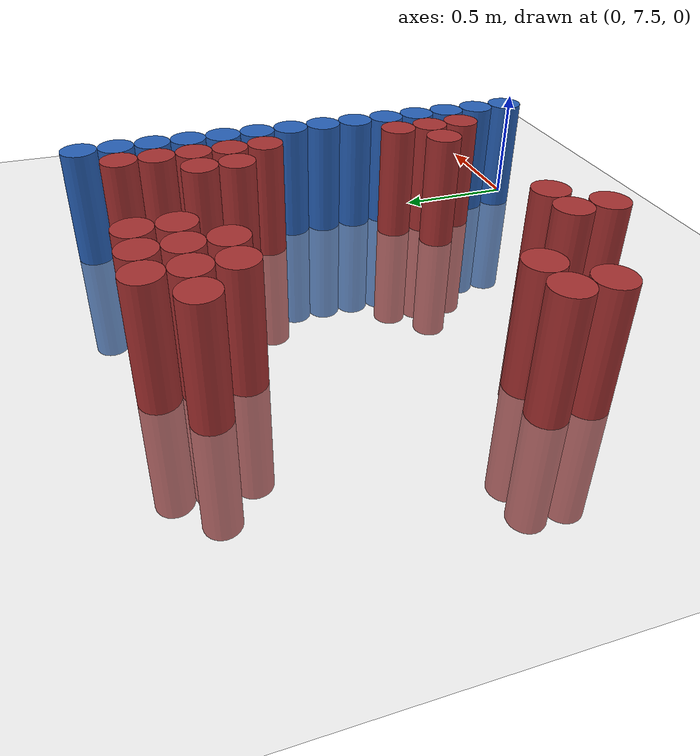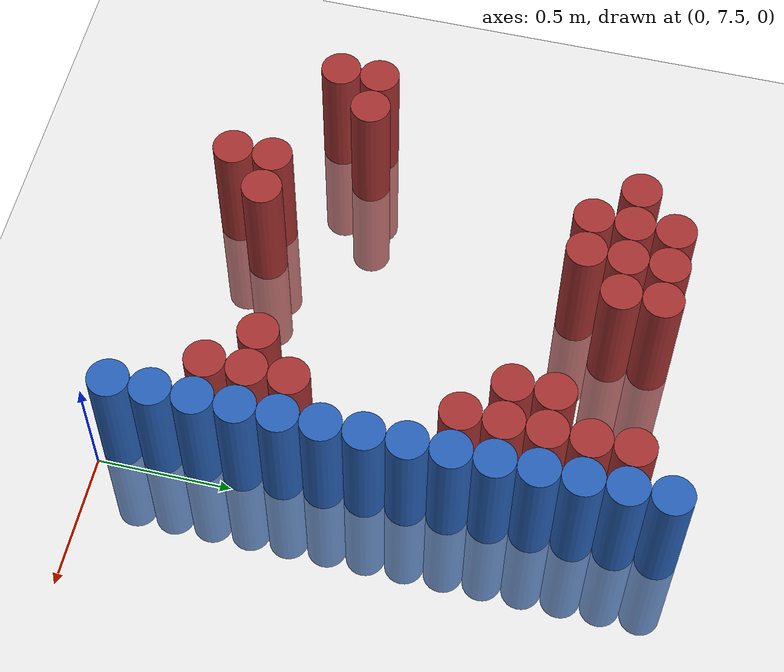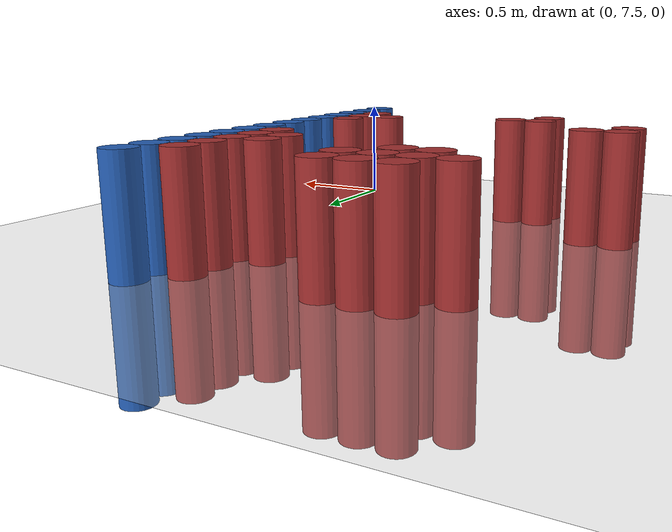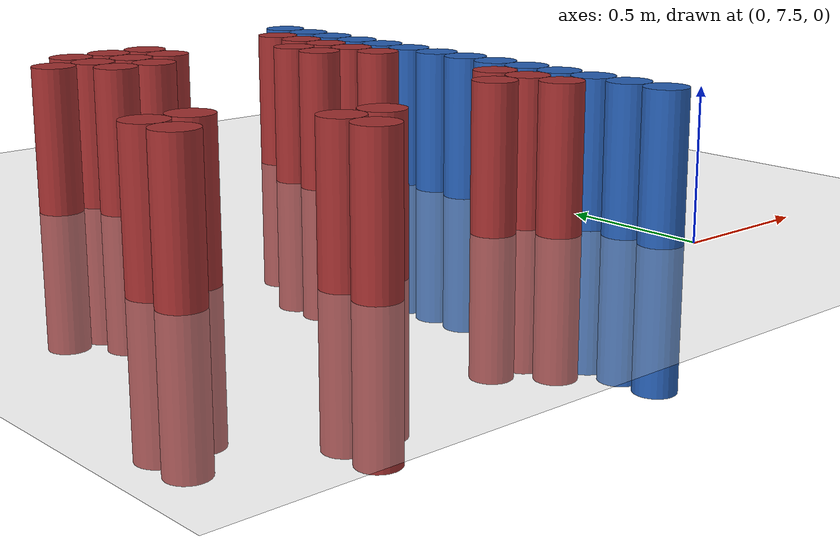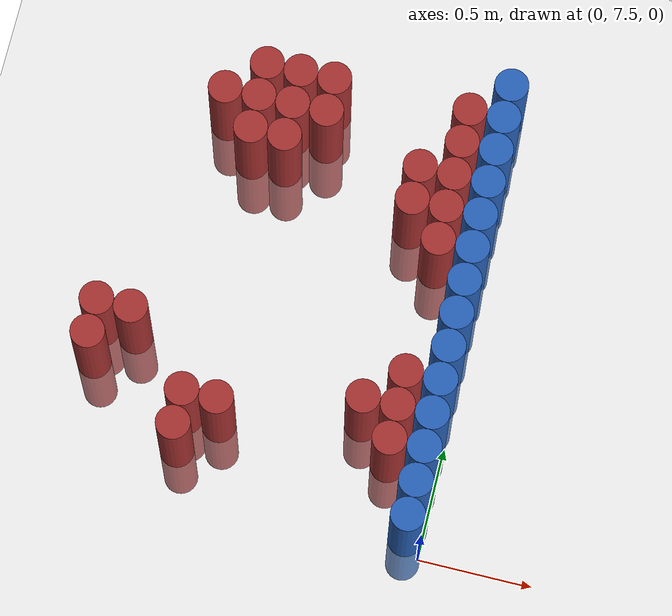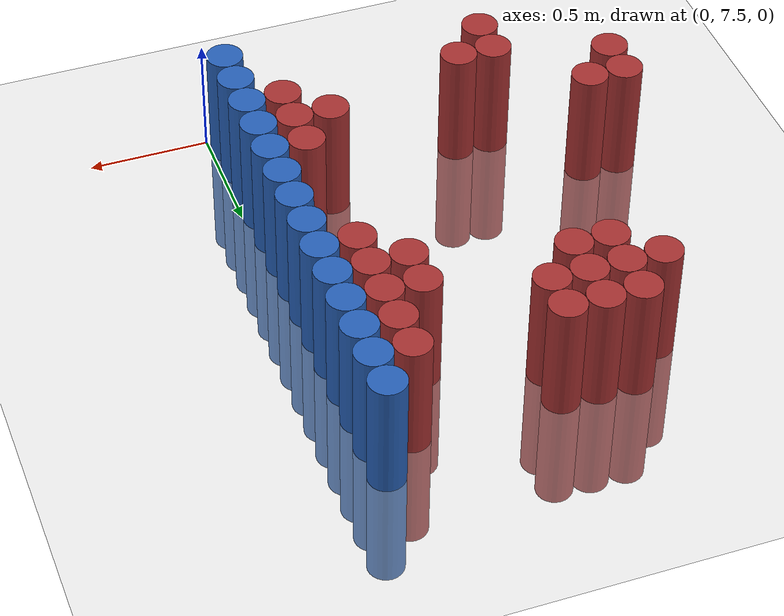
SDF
<sdf version="1.6">
 <world name="default">
  <model name="ground_plane">
   <static>1</static>
   <link name="link">
    <collision name="collision">
     <geometry><plane><normal>0 0 1</normal><size>100 100</size></plane></geometry>
     <surface><friction><ode><mu>100</mu><mu2>50</mu2></ode></friction></surface>
    </collision>
    <visual name="visual">
     <cast_shadows>0</cast_shadows>
     <geometry><plane><normal>0 0 1</normal><size>100 100</size></plane></geometry>
     <material>
      <script><uri>file://media/materials/scripts/gazebo.material</uri><name>Gazebo/Grey</name></script>
     </material>
    </visual>
   </link>
  </model>
  <model name="unit_cylinder_227">
   <static>1</static>
   <pose>-1.575000 8.025000 0.000000 0.000000 0.000000 0.000000</pose>
   <link name="link">
    <inertial>
     <mass>1</mass>
     <inertia><ixx>0.145833</ixx><ixy>0</ixy><ixz>0</ixz><iyy>0.145833</iyy><iyz>0</iyz><izz>0.125</izz></inertia>
    </inertial>
    <collision name="collision">
     <geometry><cylinder><radius>0.075000</radius><length>1</length></cylinder></geometry>
    </collision>
    <visual name="visual">
     <geometry><cylinder><radius>0.075000</radius><length>1</length></cylinder></geometry>
     <material>
      <ambient>0.648000 0.192000 0.192000 1</ambient>
      <diffuse>0.648000 0.192000 0.192000 1</diffuse>
     </material>
     <material>
      <script><name>Gazebo/Grey</name><uri>file://media/materials/scripts/gazebo.material</uri></script>
     </material>
    </visual>
    <sensor name="sensor_contact" type="contact"><contact><collision>collision</collision></contact></sensor>
   </link>
   <plugin filename="gz-sim-touchplugin-system" name="gz::sim::systems::TouchPlugin">
    <target>robot</target>
    <namespace>robot</namespace>
    <time>0.001</time>
    <enabled>true</enabled>
   </plugin>
  </model>
  <model name="unit_cylinder_228">
   <static>1</static>
   <pose>-1.575000 8.175000 0.000000 0.000000 0.000000 0.000000</pose>
   <link name="link">
    <inertial>
     <mass>1</mass>
     <inertia><ixx>0.145833</ixx><ixy>0</ixy><ixz>0</ixz><iyy>0.145833</iyy><iyz>0</iyz><izz>0.125</izz></inertia>
    </inertial>
    <collision name="collision">
     <geometry><cylinder><radius>0.075000</radius><length>1</length></cylinder></geometry>
    </collision>
    <visual name="visual">
     <geometry><cylinder><radius>0.075000</radius><length>1</length></cylinder></geometry>
     <material>
      <ambient>0.648000 0.192000 0.192000 1</ambient>
      <diffuse>0.648000 0.192000 0.192000 1</diffuse>
     </material>
     <material>
      <script><name>Gazebo/Grey</name><uri>file://media/materials/scripts/gazebo.material</uri></script>
     </material>
    </visual>
    <sensor name="sensor_contact" type="contact"><contact><collision>collision</collision></contact></sensor>
   </link>
   <plugin filename="gz-sim-touchplugin-system" name="gz::sim::systems::TouchPlugin">
    <target>robot</target>
    <namespace>robot</namespace>
    <time>0.001</time>
    <enabled>true</enabled>
   </plugin>
  </model>
  <model name="unit_cylinder_232">
   <static>1</static>
   <pose>-1.425000 8.175000 0.000000 0.000000 0.000000 0.000000</pose>
   <link name="link">
    <inertial>
     <mass>1</mass>
     <inertia><ixx>0.145833</ixx><ixy>0</ixy><ixz>0</ixz><iyy>0.145833</iyy><iyz>0</iyz><izz>0.125</izz></inertia>
    </inertial>
    <collision name="collision">
     <geometry><cylinder><radius>0.075000</radius><length>1</length></cylinder></geometry>
    </collision>
    <visual name="visual">
     <geometry><cylinder><radius>0.075000</radius><length>1</length></cylinder></geometry>
     <material>
      <ambient>0.648000 0.192000 0.192000 1</ambient>
      <diffuse>0.648000 0.192000 0.192000 1</diffuse>
     </material>
     <material>
      <script><name>Gazebo/Grey</name><uri>file://media/materials/scripts/gazebo.material</uri></script>
     </material>
    </visual>
    <sensor name="sensor_contact" type="contact"><contact><collision>collision</collision></contact></sensor>
   </link>
   <plugin filename="gz-sim-touchplugin-system" name="gz::sim::systems::TouchPlugin">
    <target>robot</target>
    <namespace>robot</namespace>
    <time>0.001</time>
    <enabled>true</enabled>
   </plugin>
  </model>
  <model name="unit_cylinder_236">
   <static>1</static>
   <pose>-1.275000 9.225000 0.000000 0.000000 0.000000 0.000000</pose>
   <link name="link">
    <inertial>
     <mass>1</mass>
     <inertia><ixx>0.145833</ixx><ixy>0</ixy><ixz>0</ixz><iyy>0.145833</iyy><iyz>0</iyz><izz>0.125</izz></inertia>
    </inertial>
    <collision name="collision">
     <geometry><cylinder><radius>0.075000</radius><length>1</length></cylinder></geometry>
    </collision>
    <visual name="visual">
     <geometry><cylinder><radius>0.075000</radius><length>1</length></cylinder></geometry>
     <material>
      <ambient>0.648000 0.192000 0.192000 1</ambient>
      <diffuse>0.648000 0.192000 0.192000 1</diffuse>
     </material>
     <material>
      <script><name>Gazebo/Grey</name><uri>file://media/materials/scripts/gazebo.material</uri></script>
     </material>
    </visual>
    <sensor name="sensor_contact" type="contact"><contact><collision>collision</collision></contact></sensor>
   </link>
   <plugin filename="gz-sim-touchplugin-system" name="gz::sim::systems::TouchPlugin">
    <target>robot</target>
    <namespace>robot</namespace>
    <time>0.001</time>
    <enabled>true</enabled>
   </plugin>
  </model>
  <model name="unit_cylinder_240">
   <static>1</static>
   <pose>-1.125000 7.725000 0.000000 0.000000 0.000000 0.000000</pose>
   <link name="link">
    <inertial>
     <mass>1</mass>
     <inertia><ixx>0.145833</ixx><ixy>0</ixy><ixz>0</ixz><iyy>0.145833</iyy><iyz>0</iyz><izz>0.125</izz></inertia>
    </inertial>
    <collision name="collision">
     <geometry><cylinder><radius>0.075000</radius><length>1</length></cylinder></geometry>
    </collision>
    <visual name="visual">
     <geometry><cylinder><radius>0.075000</radius><length>1</length></cylinder></geometry>
     <material>
      <ambient>0.648000 0.192000 0.192000 1</ambient>
      <diffuse>0.648000 0.192000 0.192000 1</diffuse>
     </material>
     <material>
      <script><name>Gazebo/Grey</name><uri>file://media/materials/scripts/gazebo.material</uri></script>
     </material>
    </visual>
    <sensor name="sensor_contact" type="contact"><contact><collision>collision</collision></contact></sensor>
   </link>
   <plugin filename="gz-sim-touchplugin-system" name="gz::sim::systems::TouchPlugin">
    <target>robot</target>
    <namespace>robot</namespace>
    <time>0.001</time>
    <enabled>true</enabled>
   </plugin>
  </model>
  <model name="unit_cylinder_241">
   <static>1</static>
   <pose>-1.125000 7.875000 0.000000 0.000000 0.000000 0.000000</pose>
   <link name="link">
    <inertial>
     <mass>1</mass>
     <inertia><ixx>0.145833</ixx><ixy>0</ixy><ixz>0</ixz><iyy>0.145833</iyy><iyz>0</iyz><izz>0.125</izz></inertia>
    </inertial>
    <collision name="collision">
     <geometry><cylinder><radius>0.075000</radius><length>1</length></cylinder></geometry>
    </collision>
    <visual name="visual">
     <geometry><cylinder><radius>0.075000</radius><length>1</length></cylinder></geometry>
     <material>
      <ambient>0.648000 0.192000 0.192000 1</ambient>
      <diffuse>0.648000 0.192000 0.192000 1</diffuse>
     </material>
     <material>
      <script><name>Gazebo/Grey</name><uri>file://media/materials/scripts/gazebo.material</uri></script>
     </material>
    </visual>
    <sensor name="sensor_contact" type="contact"><contact><collision>collision</collision></contact></sensor>
   </link>
   <plugin filename="gz-sim-touchplugin-system" name="gz::sim::systems::TouchPlugin">
    <target>robot</target>
    <namespace>robot</namespace>
    <time>0.001</time>
    <enabled>true</enabled>
   </plugin>
  </model>
  <model name="unit_cylinder_242">
   <static>1</static>
   <pose>-1.125000 9.075000 0.000000 0.000000 0.000000 0.000000</pose>
   <link name="link">
    <inertial>
     <mass>1</mass>
     <inertia><ixx>0.145833</ixx><ixy>0</ixy><ixz>0</ixz><iyy>0.145833</iyy><iyz>0</iyz><izz>0.125</izz></inertia>
    </inertial>
    <collision name="collision">
     <geometry><cylinder><radius>0.075000</radius><length>1</length></cylinder></geometry>
    </collision>
    <visual name="visual">
     <geometry><cylinder><radius>0.075000</radius><length>1</length></cylinder></geometry>
     <material>
      <ambient>0.648000 0.192000 0.192000 1</ambient>
      <diffuse>0.648000 0.192000 0.192000 1</diffuse>
     </material>
     <material>
      <script><name>Gazebo/Grey</name><uri>file://media/materials/scripts/gazebo.material</uri></script>
     </material>
    </visual>
    <sensor name="sensor_contact" type="contact"><contact><collision>collision</collision></contact></sensor>
   </link>
   <plugin filename="gz-sim-touchplugin-system" name="gz::sim::systems::TouchPlugin">
    <target>robot</target>
    <namespace>robot</namespace>
    <time>0.001</time>
    <enabled>true</enabled>
   </plugin>
  </model>
  <model name="unit_cylinder_243">
   <static>1</static>
   <pose>-1.125000 9.225000 0.000000 0.000000 0.000000 0.000000</pose>
   <link name="link">
    <inertial>
     <mass>1</mass>
     <inertia><ixx>0.145833</ixx><ixy>0</ixy><ixz>0</ixz><iyy>0.145833</iyy><iyz>0</iyz><izz>0.125</izz></inertia>
    </inertial>
    <collision name="collision">
     <geometry><cylinder><radius>0.075000</radius><length>1</length></cylinder></geometry>
    </collision>
    <visual name="visual">
     <geometry><cylinder><radius>0.075000</radius><length>1</length></cylinder></geometry>
     <material>
      <ambient>0.648000 0.192000 0.192000 1</ambient>
      <diffuse>0.648000 0.192000 0.192000 1</diffuse>
     </material>
     <material>
      <script><name>Gazebo/Grey</name><uri>file://media/materials/scripts/gazebo.material</uri></script>
     </material>
    </visual>
    <sensor name="sensor_contact" type="contact"><contact><collision>collision</collision></contact></sensor>
   </link>
   <plugin filename="gz-sim-touchplugin-system" name="gz::sim::systems::TouchPlugin">
    <target>robot</target>
    <namespace>robot</namespace>
    <time>0.001</time>
    <enabled>true</enabled>
   </plugin>
  </model>
  <model name="unit_cylinder_244">
   <static>1</static>
   <pose>-1.125000 9.375000 0.000000 0.000000 0.000000 0.000000</pose>
   <link name="link">
    <inertial>
     <mass>1</mass>
     <inertia><ixx>0.145833</ixx><ixy>0</ixy><ixz>0</ixz><iyy>0.145833</iyy><iyz>0</iyz><izz>0.125</izz></inertia>
    </inertial>
    <collision name="collision">
     <geometry><cylinder><radius>0.075000</radius><length>1</length></cylinder></geometry>
    </collision>
    <visual name="visual">
     <geometry><cylinder><radius>0.075000</radius><length>1</length></cylinder></geometry>
     <material>
      <ambient>0.648000 0.192000 0.192000 1</ambient>
      <diffuse>0.648000 0.192000 0.192000 1</diffuse>
     </material>
     <material>
      <script><name>Gazebo/Grey</name><uri>file://media/materials/scripts/gazebo.material</uri></script>
     </material>
    </visual>
    <sensor name="sensor_contact" type="contact"><contact><collision>collision</collision></contact></sensor>
   </link>
   <plugin filename="gz-sim-touchplugin-system" name="gz::sim::systems::TouchPlugin">
    <target>robot</target>
    <namespace>robot</namespace>
    <time>0.001</time>
    <enabled>true</enabled>
   </plugin>
  </model>
  <model name="unit_cylinder_251">
   <static>1</static>
   <pose>-0.975000 7.875000 0.000000 0.000000 0.000000 0.000000</pose>
   <link name="link">
    <inertial>
     <mass>1</mass>
     <inertia><ixx>0.145833</ixx><ixy>0</ixy><ixz>0</ixz><iyy>0.145833</iyy><iyz>0</iyz><izz>0.125</izz></inertia>
    </inertial>
    <collision name="collision">
     <geometry><cylinder><radius>0.075000</radius><length>1</length></cylinder></geometry>
    </collision>
    <visual name="visual">
     <geometry><cylinder><radius>0.075000</radius><length>1</length></cylinder></geometry>
     <material>
      <ambient>0.648000 0.192000 0.192000 1</ambient>
      <diffuse>0.648000 0.192000 0.192000 1</diffuse>
     </material>
     <material>
      <script><name>Gazebo/Grey</name><uri>file://media/materials/scripts/gazebo.material</uri></script>
     </material>
    </visual>
    <sensor name="sensor_contact" type="contact"><contact><collision>collision</collision></contact></sensor>
   </link>
   <plugin filename="gz-sim-touchplugin-system" name="gz::sim::systems::TouchPlugin">
    <target>robot</target>
    <namespace>robot</namespace>
    <time>0.001</time>
    <enabled>true</enabled>
   </plugin>
  </model>
  <model name="unit_cylinder_252">
   <static>1</static>
   <pose>-0.975000 9.075000 0.000000 0.000000 0.000000 0.000000</pose>
   <link name="link">
    <inertial>
     <mass>1</mass>
     <inertia><ixx>0.145833</ixx><ixy>0</ixy><ixz>0</ixz><iyy>0.145833</iyy><iyz>0</iyz><izz>0.125</izz></inertia>
    </inertial>
    <collision name="collision">
     <geometry><cylinder><radius>0.075000</radius><length>1</length></cylinder></geometry>
    </collision>
    <visual name="visual">
     <geometry><cylinder><radius>0.075000</radius><length>1</length></cylinder></geometry>
     <material>
      <ambient>0.648000 0.192000 0.192000 1</ambient>
      <diffuse>0.648000 0.192000 0.192000 1</diffuse>
     </material>
     <material>
      <script><name>Gazebo/Grey</name><uri>file://media/materials/scripts/gazebo.material</uri></script>
     </material>
    </visual>
    <sensor name="sensor_contact" type="contact"><contact><collision>collision</collision></contact></sensor>
   </link>
   <plugin filename="gz-sim-touchplugin-system" name="gz::sim::systems::TouchPlugin">
    <target>robot</target>
    <namespace>robot</namespace>
    <time>0.001</time>
    <enabled>true</enabled>
   </plugin>
  </model>
  <model name="unit_cylinder_253">
   <static>1</static>
   <pose>-0.975000 9.225000 0.000000 0.000000 0.000000 0.000000</pose>
   <link name="link">
    <inertial>
     <mass>1</mass>
     <inertia><ixx>0.145833</ixx><ixy>0</ixy><ixz>0</ixz><iyy>0.145833</iyy><iyz>0</iyz><izz>0.125</izz></inertia>
    </inertial>
    <collision name="collision">
     <geometry><cylinder><radius>0.075000</radius><length>1</length></cylinder></geometry>
    </collision>
    <visual name="visual">
     <geometry><cylinder><radius>0.075000</radius><length>1</length></cylinder></geometry>
     <material>
      <ambient>0.648000 0.192000 0.192000 1</ambient>
      <diffuse>0.648000 0.192000 0.192000 1</diffuse>
     </material>
     <material>
      <script><name>Gazebo/Grey</name><uri>file://media/materials/scripts/gazebo.material</uri></script>
     </material>
    </visual>
    <sensor name="sensor_contact" type="contact"><contact><collision>collision</collision></contact></sensor>
   </link>
   <plugin filename="gz-sim-touchplugin-system" name="gz::sim::systems::TouchPlugin">
    <target>robot</target>
    <namespace>robot</namespace>
    <time>0.001</time>
    <enabled>true</enabled>
   </plugin>
  </model>
  <model name="unit_cylinder_254">
   <static>1</static>
   <pose>-0.975000 9.375000 0.000000 0.000000 0.000000 0.000000</pose>
   <link name="link">
    <inertial>
     <mass>1</mass>
     <inertia><ixx>0.145833</ixx><ixy>0</ixy><ixz>0</ixz><iyy>0.145833</iyy><iyz>0</iyz><izz>0.125</izz></inertia>
    </inertial>
    <collision name="collision">
     <geometry><cylinder><radius>0.075000</radius><length>1</length></cylinder></geometry>
    </collision>
    <visual name="visual">
     <geometry><cylinder><radius>0.075000</radius><length>1</length></cylinder></geometry>
     <material>
      <ambient>0.648000 0.192000 0.192000 1</ambient>
      <diffuse>0.648000 0.192000 0.192000 1</diffuse>
     </material>
     <material>
      <script><name>Gazebo/Grey</name><uri>file://media/materials/scripts/gazebo.material</uri></script>
     </material>
    </visual>
    <sensor name="sensor_contact" type="contact"><contact><collision>collision</collision></contact></sensor>
   </link>
   <plugin filename="gz-sim-touchplugin-system" name="gz::sim::systems::TouchPlugin">
    <target>robot</target>
    <namespace>robot</namespace>
    <time>0.001</time>
    <enabled>true</enabled>
   </plugin>
  </model>
  <model name="unit_cylinder_259">
   <static>1</static>
   <pose>-0.825000 9.225000 0.000000 0.000000 0.000000 0.000000</pose>
   <link name="link">
    <inertial>
     <mass>1</mass>
     <inertia><ixx>0.145833</ixx><ixy>0</ixy><ixz>0</ixz><iyy>0.145833</iyy><iyz>0</iyz><izz>0.125</izz></inertia>
    </inertial>
    <collision name="collision">
     <geometry><cylinder><radius>0.075000</radius><length>1</length></cylinder></geometry>
    </collision>
    <visual name="visual">
     <geometry><cylinder><radius>0.075000</radius><length>1</length></cylinder></geometry>
     <material>
      <ambient>0.648000 0.192000 0.192000 1</ambient>
      <diffuse>0.648000 0.192000 0.192000 1</diffuse>
     </material>
     <material>
      <script><name>Gazebo/Grey</name><uri>file://media/materials/scripts/gazebo.material</uri></script>
     </material>
    </visual>
    <sensor name="sensor_contact" type="contact"><contact><collision>collision</collision></contact></sensor>
   </link>
   <plugin filename="gz-sim-touchplugin-system" name="gz::sim::systems::TouchPlugin">
    <target>robot</target>
    <namespace>robot</namespace>
    <time>0.001</time>
    <enabled>true</enabled>
   </plugin>
  </model>
  <model name="unit_cylinder_260">
   <static>1</static>
   <pose>-0.825000 9.375000 0.000000 0.000000 0.000000 0.000000</pose>
   <link name="link">
    <inertial>
     <mass>1</mass>
     <inertia><ixx>0.145833</ixx><ixy>0</ixy><ixz>0</ixz><iyy>0.145833</iyy><iyz>0</iyz><izz>0.125</izz></inertia>
    </inertial>
    <collision name="collision">
     <geometry><cylinder><radius>0.075000</radius><length>1</length></cylinder></geometry>
    </collision>
    <visual name="visual">
     <geometry><cylinder><radius>0.075000</radius><length>1</length></cylinder></geometry>
     <material>
      <ambient>0.648000 0.192000 0.192000 1</ambient>
      <diffuse>0.648000 0.192000 0.192000 1</diffuse>
     </material>
     <material>
      <script><name>Gazebo/Grey</name><uri>file://media/materials/scripts/gazebo.material</uri></script>
     </material>
    </visual>
    <sensor name="sensor_contact" type="contact"><contact><collision>collision</collision></contact></sensor>
   </link>
   <plugin filename="gz-sim-touchplugin-system" name="gz::sim::systems::TouchPlugin">
    <target>robot</target>
    <namespace>robot</namespace>
    <time>0.001</time>
    <enabled>true</enabled>
   </plugin>
  </model>
  <model name="unit_cylinder_270">
   <static>1</static>
   <pose>-0.375000 8.025000 0.000000 0.000000 0.000000 0.000000</pose>
   <link name="link">
    <inertial>
     <mass>1</mass>
     <inertia><ixx>0.145833</ixx><ixy>0</ixy><ixz>0</ixz><iyy>0.145833</iyy><iyz>0</iyz><izz>0.125</izz></inertia>
    </inertial>
    <collision name="collision">
     <geometry><cylinder><radius>0.075000</radius><length>1</length></cylinder></geometry>
    </collision>
    <visual name="visual">
     <geometry><cylinder><radius>0.075000</radius><length>1</length></cylinder></geometry>
     <material>
      <ambient>0.648000 0.192000 0.192000 1</ambient>
      <diffuse>0.648000 0.192000 0.192000 1</diffuse>
     </material>
     <material>
      <script><name>Gazebo/Grey</name><uri>file://media/materials/scripts/gazebo.material</uri></script>
     </material>
    </visual>
    <sensor name="sensor_contact" type="contact"><contact><collision>collision</collision></contact></sensor>
   </link>
   <plugin filename="gz-sim-touchplugin-system" name="gz::sim::systems::TouchPlugin">
    <target>robot</target>
    <namespace>robot</namespace>
    <time>0.001</time>
    <enabled>true</enabled>
   </plugin>
  </model>
  <model name="unit_cylinder_271">
   <static>1</static>
   <pose>-0.375000 8.925000 0.000000 0.000000 0.000000 0.000000</pose>
   <link name="link">
    <inertial>
     <mass>1</mass>
     <inertia><ixx>0.145833</ixx><ixy>0</ixy><ixz>0</ixz><iyy>0.145833</iyy><iyz>0</iyz><izz>0.125</izz></inertia>
    </inertial>
    <collision name="collision">
     <geometry><cylinder><radius>0.075000</radius><length>1</length></cylinder></geometry>
    </collision>
    <visual name="visual">
     <geometry><cylinder><radius>0.075000</radius><length>1</length></cylinder></geometry>
     <material>
      <ambient>0.648000 0.192000 0.192000 1</ambient>
      <diffuse>0.648000 0.192000 0.192000 1</diffuse>
     </material>
     <material>
      <script><name>Gazebo/Grey</name><uri>file://media/materials/scripts/gazebo.material</uri></script>
     </material>
    </visual>
    <sensor name="sensor_contact" type="contact"><contact><collision>collision</collision></contact></sensor>
   </link>
   <plugin filename="gz-sim-touchplugin-system" name="gz::sim::systems::TouchPlugin">
    <target>robot</target>
    <namespace>robot</namespace>
    <time>0.001</time>
    <enabled>true</enabled>
   </plugin>
  </model>
  <model name="unit_cylinder_272">
   <static>1</static>
   <pose>-0.375000 9.075000 0.000000 0.000000 0.000000 0.000000</pose>
   <link name="link">
    <inertial>
     <mass>1</mass>
     <inertia><ixx>0.145833</ixx><ixy>0</ixy><ixz>0</ixz><iyy>0.145833</iyy><iyz>0</iyz><izz>0.125</izz></inertia>
    </inertial>
    <collision name="collision">
     <geometry><cylinder><radius>0.075000</radius><length>1</length></cylinder></geometry>
    </collision>
    <visual name="visual">
     <geometry><cylinder><radius>0.075000</radius><length>1</length></cylinder></geometry>
     <material>
      <ambient>0.648000 0.192000 0.192000 1</ambient>
      <diffuse>0.648000 0.192000 0.192000 1</diffuse>
     </material>
     <material>
      <script><name>Gazebo/Grey</name><uri>file://media/materials/scripts/gazebo.material</uri></script>
     </material>
    </visual>
    <sensor name="sensor_contact" type="contact"><contact><collision>collision</collision></contact></sensor>
   </link>
   <plugin filename="gz-sim-touchplugin-system" name="gz::sim::systems::TouchPlugin">
    <target>robot</target>
    <namespace>robot</namespace>
    <time>0.001</time>
    <enabled>true</enabled>
   </plugin>
  </model>
  <model name="unit_cylinder_283">
   <static>1</static>
   <pose>-0.225000 7.875000 0.000000 0.000000 0.000000 0.000000</pose>
   <link name="link">
    <inertial>
     <mass>1</mass>
     <inertia><ixx>0.145833</ixx><ixy>0</ixy><ixz>0</ixz><iyy>0.145833</iyy><iyz>0</iyz><izz>0.125</izz></inertia>
    </inertial>
    <collision name="collision">
     <geometry><cylinder><radius>0.075000</radius><length>1</length></cylinder></geometry>
    </collision>
    <visual name="visual">
     <geometry><cylinder><radius>0.075000</radius><length>1</length></cylinder></geometry>
     <material>
      <ambient>0.648000 0.192000 0.192000 1</ambient>
      <diffuse>0.648000 0.192000 0.192000 1</diffuse>
     </material>
     <material>
      <script><name>Gazebo/Grey</name><uri>file://media/materials/scripts/gazebo.material</uri></script>
     </material>
    </visual>
    <sensor name="sensor_contact" type="contact"><contact><collision>collision</collision></contact></sensor>
   </link>
   <plugin filename="gz-sim-touchplugin-system" name="gz::sim::systems::TouchPlugin">
    <target>robot</target>
    <namespace>robot</namespace>
    <time>0.001</time>
    <enabled>true</enabled>
   </plugin>
  </model>
  <model name="unit_cylinder_284">
   <static>1</static>
   <pose>-0.225000 8.025000 0.000000 0.000000 0.000000 0.000000</pose>
   <link name="link">
    <inertial>
     <mass>1</mass>
     <inertia><ixx>0.145833</ixx><ixy>0</ixy><ixz>0</ixz><iyy>0.145833</iyy><iyz>0</iyz><izz>0.125</izz></inertia>
    </inertial>
    <collision name="collision">
     <geometry><cylinder><radius>0.075000</radius><length>1</length></cylinder></geometry>
    </collision>
    <visual name="visual">
     <geometry><cylinder><radius>0.075000</radius><length>1</length></cylinder></geometry>
     <material>
      <ambient>0.648000 0.192000 0.192000 1</ambient>
      <diffuse>0.648000 0.192000 0.192000 1</diffuse>
     </material>
     <material>
      <script><name>Gazebo/Grey</name><uri>file://media/materials/scripts/gazebo.material</uri></script>
     </material>
    </visual>
    <sensor name="sensor_contact" type="contact"><contact><collision>collision</collision></contact></sensor>
   </link>
   <plugin filename="gz-sim-touchplugin-system" name="gz::sim::systems::TouchPlugin">
    <target>robot</target>
    <namespace>robot</namespace>
    <time>0.001</time>
    <enabled>true</enabled>
   </plugin>
  </model>
  <model name="unit_cylinder_285">
   <static>1</static>
   <pose>-0.225000 8.175000 0.000000 0.000000 0.000000 0.000000</pose>
   <link name="link">
    <inertial>
     <mass>1</mass>
     <inertia><ixx>0.145833</ixx><ixy>0</ixy><ixz>0</ixz><iyy>0.145833</iyy><iyz>0</iyz><izz>0.125</izz></inertia>
    </inertial>
    <collision name="collision">
     <geometry><cylinder><radius>0.075000</radius><length>1</length></cylinder></geometry>
    </collision>
    <visual name="visual">
     <geometry><cylinder><radius>0.075000</radius><length>1</length></cylinder></geometry>
     <material>
      <ambient>0.648000 0.192000 0.192000 1</ambient>
      <diffuse>0.648000 0.192000 0.192000 1</diffuse>
     </material>
     <material>
      <script><name>Gazebo/Grey</name><uri>file://media/materials/scripts/gazebo.material</uri></script>
     </material>
    </visual>
    <sensor name="sensor_contact" type="contact"><contact><collision>collision</collision></contact></sensor>
   </link>
   <plugin filename="gz-sim-touchplugin-system" name="gz::sim::systems::TouchPlugin">
    <target>robot</target>
    <namespace>robot</namespace>
    <time>0.001</time>
    <enabled>true</enabled>
   </plugin>
  </model>
  <model name="unit_cylinder_286">
   <static>1</static>
   <pose>-0.225000 8.775000 0.000000 0.000000 0.000000 0.000000</pose>
   <link name="link">
    <inertial>
     <mass>1</mass>
     <inertia><ixx>0.145833</ixx><ixy>0</ixy><ixz>0</ixz><iyy>0.145833</iyy><iyz>0</iyz><izz>0.125</izz></inertia>
    </inertial>
    <collision name="collision">
     <geometry><cylinder><radius>0.075000</radius><length>1</length></cylinder></geometry>
    </collision>
    <visual name="visual">
     <geometry><cylinder><radius>0.075000</radius><length>1</length></cylinder></geometry>
     <material>
      <ambient>0.648000 0.192000 0.192000 1</ambient>
      <diffuse>0.648000 0.192000 0.192000 1</diffuse>
     </material>
     <material>
      <script><name>Gazebo/Grey</name><uri>file://media/materials/scripts/gazebo.material</uri></script>
     </material>
    </visual>
    <sensor name="sensor_contact" type="contact"><contact><collision>collision</collision></contact></sensor>
   </link>
   <plugin filename="gz-sim-touchplugin-system" name="gz::sim::systems::TouchPlugin">
    <target>robot</target>
    <namespace>robot</namespace>
    <time>0.001</time>
    <enabled>true</enabled>
   </plugin>
  </model>
  <model name="unit_cylinder_287">
   <static>1</static>
   <pose>-0.225000 8.925000 0.000000 0.000000 0.000000 0.000000</pose>
   <link name="link">
    <inertial>
     <mass>1</mass>
     <inertia><ixx>0.145833</ixx><ixy>0</ixy><ixz>0</ixz><iyy>0.145833</iyy><iyz>0</iyz><izz>0.125</izz></inertia>
    </inertial>
    <collision name="collision">
     <geometry><cylinder><radius>0.075000</radius><length>1</length></cylinder></geometry>
    </collision>
    <visual name="visual">
     <geometry><cylinder><radius>0.075000</radius><length>1</length></cylinder></geometry>
     <material>
      <ambient>0.648000 0.192000 0.192000 1</ambient>
      <diffuse>0.648000 0.192000 0.192000 1</diffuse>
     </material>
     <material>
      <script><name>Gazebo/Grey</name><uri>file://media/materials/scripts/gazebo.material</uri></script>
     </material>
    </visual>
    <sensor name="sensor_contact" type="contact"><contact><collision>collision</collision></contact></sensor>
   </link>
   <plugin filename="gz-sim-touchplugin-system" name="gz::sim::systems::TouchPlugin">
    <target>robot</target>
    <namespace>robot</namespace>
    <time>0.001</time>
    <enabled>true</enabled>
   </plugin>
  </model>
  <model name="unit_cylinder_288">
   <static>1</static>
   <pose>-0.225000 9.075000 0.000000 0.000000 0.000000 0.000000</pose>
   <link name="link">
    <inertial>
     <mass>1</mass>
     <inertia><ixx>0.145833</ixx><ixy>0</ixy><ixz>0</ixz><iyy>0.145833</iyy><iyz>0</iyz><izz>0.125</izz></inertia>
    </inertial>
    <collision name="collision">
     <geometry><cylinder><radius>0.075000</radius><length>1</length></cylinder></geometry>
    </collision>
    <visual name="visual">
     <geometry><cylinder><radius>0.075000</radius><length>1</length></cylinder></geometry>
     <material>
      <ambient>0.648000 0.192000 0.192000 1</ambient>
      <diffuse>0.648000 0.192000 0.192000 1</diffuse>
     </material>
     <material>
      <script><name>Gazebo/Grey</name><uri>file://media/materials/scripts/gazebo.material</uri></script>
     </material>
    </visual>
    <sensor name="sensor_contact" type="contact"><contact><collision>collision</collision></contact></sensor>
   </link>
   <plugin filename="gz-sim-touchplugin-system" name="gz::sim::systems::TouchPlugin">
    <target>robot</target>
    <namespace>robot</namespace>
    <time>0.001</time>
    <enabled>true</enabled>
   </plugin>
  </model>
  <model name="unit_cylinder_289">
   <static>1</static>
   <pose>-0.225000 9.225000 0.000000 0.000000 0.000000 0.000000</pose>
   <link name="link">
    <inertial>
     <mass>1</mass>
     <inertia><ixx>0.145833</ixx><ixy>0</ixy><ixz>0</ixz><iyy>0.145833</iyy><iyz>0</iyz><izz>0.125</izz></inertia>
    </inertial>
    <collision name="collision">
     <geometry><cylinder><radius>0.075000</radius><length>1</length></cylinder></geometry>
    </collision>
    <visual name="visual">
     <geometry><cylinder><radius>0.075000</radius><length>1</length></cylinder></geometry>
     <material>
      <ambient>0.648000 0.192000 0.192000 1</ambient>
      <diffuse>0.648000 0.192000 0.192000 1</diffuse>
     </material>
     <material>
      <script><name>Gazebo/Grey</name><uri>file://media/materials/scripts/gazebo.material</uri></script>
     </material>
    </visual>
    <sensor name="sensor_contact" type="contact"><contact><collision>collision</collision></contact></sensor>
   </link>
   <plugin filename="gz-sim-touchplugin-system" name="gz::sim::systems::TouchPlugin">
    <target>robot</target>
    <namespace>robot</namespace>
    <time>0.001</time>
    <enabled>true</enabled>
   </plugin>
  </model>
  <model name="unit_cylinder_290">
   <static>1</static>
   <pose>-0.225000 9.375000 0.000000 0.000000 0.000000 0.000000</pose>
   <link name="link">
    <inertial>
     <mass>1</mass>
     <inertia><ixx>0.145833</ixx><ixy>0</ixy><ixz>0</ixz><iyy>0.145833</iyy><iyz>0</iyz><izz>0.125</izz></inertia>
    </inertial>
    <collision name="collision">
     <geometry><cylinder><radius>0.075000</radius><length>1</length></cylinder></geometry>
    </collision>
    <visual name="visual">
     <geometry><cylinder><radius>0.075000</radius><length>1</length></cylinder></geometry>
     <material>
      <ambient>0.648000 0.192000 0.192000 1</ambient>
      <diffuse>0.648000 0.192000 0.192000 1</diffuse>
     </material>
     <material>
      <script><name>Gazebo/Grey</name><uri>file://media/materials/scripts/gazebo.material</uri></script>
     </material>
    </visual>
    <sensor name="sensor_contact" type="contact"><contact><collision>collision</collision></contact></sensor>
   </link>
   <plugin filename="gz-sim-touchplugin-system" name="gz::sim::systems::TouchPlugin">
    <target>robot</target>
    <namespace>robot</namespace>
    <time>0.001</time>
    <enabled>true</enabled>
   </plugin>
  </model>
  <model name="unit_cylinder_307">
   <static>1</static>
   <pose>-0.075000 7.575000 0.000000 0.000000 0.000000 0.000000</pose>
   <link name="link">
    <inertial>
     <mass>1</mass>
     <inertia><ixx>0.145833</ixx><ixy>0</ixy><ixz>0</ixz><iyy>0.145833</iyy><iyz>0</iyz><izz>0.125</izz></inertia>
    </inertial>
    <collision name="collision">
     <geometry><cylinder><radius>0.075000</radius><length>1</length></cylinder></geometry>
    </collision>
    <visual name="visual">
     <geometry><cylinder><radius>0.075000</radius><length>1</length></cylinder></geometry>
     <material>
      <ambient>0.152000 0.379000 0.720000 1</ambient>
      <diffuse>0.152000 0.379000 0.720000 1</diffuse>
     </material>
     <material>
      <script><name>Gazebo/Grey</name><uri>file://media/materials/scripts/gazebo.material</uri></script>
     </material>
    </visual>
    <sensor name="sensor_contact" type="contact"><contact><collision>collision</collision></contact></sensor>
   </link>
   <plugin filename="gz-sim-touchplugin-system" name="gz::sim::systems::TouchPlugin">
    <target>robot</target>
    <namespace>robot</namespace>
    <time>0.001</time>
    <enabled>true</enabled>
   </plugin>
  </model>
  <model name="unit_cylinder_308">
   <static>1</static>
   <pose>-0.075000 7.725000 0.000000 0.000000 0.000000 0.000000</pose>
   <link name="link">
    <inertial>
     <mass>1</mass>
     <inertia><ixx>0.145833</ixx><ixy>0</ixy><ixz>0</ixz><iyy>0.145833</iyy><iyz>0</iyz><izz>0.125</izz></inertia>
    </inertial>
    <collision name="collision">
     <geometry><cylinder><radius>0.075000</radius><length>1</length></cylinder></geometry>
    </collision>
    <visual name="visual">
     <geometry><cylinder><radius>0.075000</radius><length>1</length></cylinder></geometry>
     <material>
      <ambient>0.152000 0.379000 0.720000 1</ambient>
      <diffuse>0.152000 0.379000 0.720000 1</diffuse>
     </material>
     <material>
      <script><name>Gazebo/Grey</name><uri>file://media/materials/scripts/gazebo.material</uri></script>
     </material>
    </visual>
    <sensor name="sensor_contact" type="contact"><contact><collision>collision</collision></contact></sensor>
   </link>
   <plugin filename="gz-sim-touchplugin-system" name="gz::sim::systems::TouchPlugin">
    <target>robot</target>
    <namespace>robot</namespace>
    <time>0.001</time>
    <enabled>true</enabled>
   </plugin>
  </model>
  <model name="unit_cylinder_309">
   <static>1</static>
   <pose>-0.075000 7.875000 0.000000 0.000000 0.000000 0.000000</pose>
   <link name="link">
    <inertial>
     <mass>1</mass>
     <inertia><ixx>0.145833</ixx><ixy>0</ixy><ixz>0</ixz><iyy>0.145833</iyy><iyz>0</iyz><izz>0.125</izz></inertia>
    </inertial>
    <collision name="collision">
     <geometry><cylinder><radius>0.075000</radius><length>1</length></cylinder></geometry>
    </collision>
    <visual name="visual">
     <geometry><cylinder><radius>0.075000</radius><length>1</length></cylinder></geometry>
     <material>
      <ambient>0.152000 0.379000 0.720000 1</ambient>
      <diffuse>0.152000 0.379000 0.720000 1</diffuse>
     </material>
     <material>
      <script><name>Gazebo/Grey</name><uri>file://media/materials/scripts/gazebo.material</uri></script>
     </material>
    </visual>
    <sensor name="sensor_contact" type="contact"><contact><collision>collision</collision></contact></sensor>
   </link>
   <plugin filename="gz-sim-touchplugin-system" name="gz::sim::systems::TouchPlugin">
    <target>robot</target>
    <namespace>robot</namespace>
    <time>0.001</time>
    <enabled>true</enabled>
   </plugin>
  </model>
  <model name="unit_cylinder_310">
   <static>1</static>
   <pose>-0.075000 8.025000 0.000000 0.000000 0.000000 0.000000</pose>
   <link name="link">
    <inertial>
     <mass>1</mass>
     <inertia><ixx>0.145833</ixx><ixy>0</ixy><ixz>0</ixz><iyy>0.145833</iyy><iyz>0</iyz><izz>0.125</izz></inertia>
    </inertial>
    <collision name="collision">
     <geometry><cylinder><radius>0.075000</radius><length>1</length></cylinder></geometry>
    </collision>
    <visual name="visual">
     <geometry><cylinder><radius>0.075000</radius><length>1</length></cylinder></geometry>
     <material>
      <ambient>0.152000 0.379000 0.720000 1</ambient>
      <diffuse>0.152000 0.379000 0.720000 1</diffuse>
     </material>
     <material>
      <script><name>Gazebo/Grey</name><uri>file://media/materials/scripts/gazebo.material</uri></script>
     </material>
    </visual>
    <sensor name="sensor_contact" type="contact"><contact><collision>collision</collision></contact></sensor>
   </link>
   <plugin filename="gz-sim-touchplugin-system" name="gz::sim::systems::TouchPlugin">
    <target>robot</target>
    <namespace>robot</namespace>
    <time>0.001</time>
    <enabled>true</enabled>
   </plugin>
  </model>
  <model name="unit_cylinder_311">
   <static>1</static>
   <pose>-0.075000 8.175000 0.000000 0.000000 0.000000 0.000000</pose>
   <link name="link">
    <inertial>
     <mass>1</mass>
     <inertia><ixx>0.145833</ixx><ixy>0</ixy><ixz>0</ixz><iyy>0.145833</iyy><iyz>0</iyz><izz>0.125</izz></inertia>
    </inertial>
    <collision name="collision">
     <geometry><cylinder><radius>0.075000</radius><length>1</length></cylinder></geometry>
    </collision>
    <visual name="visual">
     <geometry><cylinder><radius>0.075000</radius><length>1</length></cylinder></geometry>
     <material>
      <ambient>0.152000 0.379000 0.720000 1</ambient>
      <diffuse>0.152000 0.379000 0.720000 1</diffuse>
     </material>
     <material>
      <script><name>Gazebo/Grey</name><uri>file://media/materials/scripts/gazebo.material</uri></script>
     </material>
    </visual>
    <sensor name="sensor_contact" type="contact"><contact><collision>collision</collision></contact></sensor>
   </link>
   <plugin filename="gz-sim-touchplugin-system" name="gz::sim::systems::TouchPlugin">
    <target>robot</target>
    <namespace>robot</namespace>
    <time>0.001</time>
    <enabled>true</enabled>
   </plugin>
  </model>
  <model name="unit_cylinder_312">
   <static>1</static>
   <pose>-0.075000 8.325000 0.000000 0.000000 0.000000 0.000000</pose>
   <link name="link">
    <inertial>
     <mass>1</mass>
     <inertia><ixx>0.145833</ixx><ixy>0</ixy><ixz>0</ixz><iyy>0.145833</iyy><iyz>0</iyz><izz>0.125</izz></inertia>
    </inertial>
    <collision name="collision">
     <geometry><cylinder><radius>0.075000</radius><length>1</length></cylinder></geometry>
    </collision>
    <visual name="visual">
     <geometry><cylinder><radius>0.075000</radius><length>1</length></cylinder></geometry>
     <material>
      <ambient>0.152000 0.379000 0.720000 1</ambient>
      <diffuse>0.152000 0.379000 0.720000 1</diffuse>
     </material>
     <material>
      <script><name>Gazebo/Grey</name><uri>file://media/materials/scripts/gazebo.material</uri></script>
     </material>
    </visual>
    <sensor name="sensor_contact" type="contact"><contact><collision>collision</collision></contact></sensor>
   </link>
   <plugin filename="gz-sim-touchplugin-system" name="gz::sim::systems::TouchPlugin">
    <target>robot</target>
    <namespace>robot</namespace>
    <time>0.001</time>
    <enabled>true</enabled>
   </plugin>
  </model>
  <model name="unit_cylinder_313">
   <static>1</static>
   <pose>-0.075000 8.475000 0.000000 0.000000 0.000000 0.000000</pose>
   <link name="link">
    <inertial>
     <mass>1</mass>
     <inertia><ixx>0.145833</ixx><ixy>0</ixy><ixz>0</ixz><iyy>0.145833</iyy><iyz>0</iyz><izz>0.125</izz></inertia>
    </inertial>
    <collision name="collision">
     <geometry><cylinder><radius>0.075000</radius><length>1</length></cylinder></geometry>
    </collision>
    <visual name="visual">
     <geometry><cylinder><radius>0.075000</radius><length>1</length></cylinder></geometry>
     <material>
      <ambient>0.152000 0.379000 0.720000 1</ambient>
      <diffuse>0.152000 0.379000 0.720000 1</diffuse>
     </material>
     <material>
      <script><name>Gazebo/Grey</name><uri>file://media/materials/scripts/gazebo.material</uri></script>
     </material>
    </visual>
    <sensor name="sensor_contact" type="contact"><contact><collision>collision</collision></contact></sensor>
   </link>
   <plugin filename="gz-sim-touchplugin-system" name="gz::sim::systems::TouchPlugin">
    <target>robot</target>
    <namespace>robot</namespace>
    <time>0.001</time>
    <enabled>true</enabled>
   </plugin>
  </model>
  <model name="unit_cylinder_314">
   <static>1</static>
   <pose>-0.075000 8.625000 0.000000 0.000000 0.000000 0.000000</pose>
   <link name="link">
    <inertial>
     <mass>1</mass>
     <inertia><ixx>0.145833</ixx><ixy>0</ixy><ixz>0</ixz><iyy>0.145833</iyy><iyz>0</iyz><izz>0.125</izz></inertia>
    </inertial>
    <collision name="collision">
     <geometry><cylinder><radius>0.075000</radius><length>1</length></cylinder></geometry>
    </collision>
    <visual name="visual">
     <geometry><cylinder><radius>0.075000</radius><length>1</length></cylinder></geometry>
     <material>
      <ambient>0.152000 0.379000 0.720000 1</ambient>
      <diffuse>0.152000 0.379000 0.720000 1</diffuse>
     </material>
     <material>
      <script><name>Gazebo/Grey</name><uri>file://media/materials/scripts/gazebo.material</uri></script>
     </material>
    </visual>
    <sensor name="sensor_contact" type="contact"><contact><collision>collision</collision></contact></sensor>
   </link>
   <plugin filename="gz-sim-touchplugin-system" name="gz::sim::systems::TouchPlugin">
    <target>robot</target>
    <namespace>robot</namespace>
    <time>0.001</time>
    <enabled>true</enabled>
   </plugin>
  </model>
  <model name="unit_cylinder_315">
   <static>1</static>
   <pose>-0.075000 8.775000 0.000000 0.000000 0.000000 0.000000</pose>
   <link name="link">
    <inertial>
     <mass>1</mass>
     <inertia><ixx>0.145833</ixx><ixy>0</ixy><ixz>0</ixz><iyy>0.145833</iyy><iyz>0</iyz><izz>0.125</izz></inertia>
    </inertial>
    <collision name="collision">
     <geometry><cylinder><radius>0.075000</radius><length>1</length></cylinder></geometry>
    </collision>
    <visual name="visual">
     <geometry><cylinder><radius>0.075000</radius><length>1</length></cylinder></geometry>
     <material>
      <ambient>0.152000 0.379000 0.720000 1</ambient>
      <diffuse>0.152000 0.379000 0.720000 1</diffuse>
     </material>
     <material>
      <script><name>Gazebo/Grey</name><uri>file://media/materials/scripts/gazebo.material</uri></script>
     </material>
    </visual>
    <sensor name="sensor_contact" type="contact"><contact><collision>collision</collision></contact></sensor>
   </link>
   <plugin filename="gz-sim-touchplugin-system" name="gz::sim::systems::TouchPlugin">
    <target>robot</target>
    <namespace>robot</namespace>
    <time>0.001</time>
    <enabled>true</enabled>
   </plugin>
  </model>
  <model name="unit_cylinder_316">
   <static>1</static>
   <pose>-0.075000 8.925000 0.000000 0.000000 0.000000 0.000000</pose>
   <link name="link">
    <inertial>
     <mass>1</mass>
     <inertia><ixx>0.145833</ixx><ixy>0</ixy><ixz>0</ixz><iyy>0.145833</iyy><iyz>0</iyz><izz>0.125</izz></inertia>
    </inertial>
    <collision name="collision">
     <geometry><cylinder><radius>0.075000</radius><length>1</length></cylinder></geometry>
    </collision>
    <visual name="visual">
     <geometry><cylinder><radius>0.075000</radius><length>1</length></cylinder></geometry>
     <material>
      <ambient>0.152000 0.379000 0.720000 1</ambient>
      <diffuse>0.152000 0.379000 0.720000 1</diffuse>
     </material>
     <material>
      <script><name>Gazebo/Grey</name><uri>file://media/materials/scripts/gazebo.material</uri></script>
     </material>
    </visual>
    <sensor name="sensor_contact" type="contact"><contact><collision>collision</collision></contact></sensor>
   </link>
   <plugin filename="gz-sim-touchplugin-system" name="gz::sim::systems::TouchPlugin">
    <target>robot</target>
    <namespace>robot</namespace>
    <time>0.001</time>
    <enabled>true</enabled>
   </plugin>
  </model>
  <model name="unit_cylinder_317">
   <static>1</static>
   <pose>-0.075000 9.075000 0.000000 0.000000 0.000000 0.000000</pose>
   <link name="link">
    <inertial>
     <mass>1</mass>
     <inertia><ixx>0.145833</ixx><ixy>0</ixy><ixz>0</ixz><iyy>0.145833</iyy><iyz>0</iyz><izz>0.125</izz></inertia>
    </inertial>
    <collision name="collision">
     <geometry><cylinder><radius>0.075000</radius><length>1</length></cylinder></geometry>
    </collision>
    <visual name="visual">
     <geometry><cylinder><radius>0.075000</radius><length>1</length></cylinder></geometry>
     <material>
      <ambient>0.152000 0.379000 0.720000 1</ambient>
      <diffuse>0.152000 0.379000 0.720000 1</diffuse>
     </material>
     <material>
      <script><name>Gazebo/Grey</name><uri>file://media/materials/scripts/gazebo.material</uri></script>
     </material>
    </visual>
    <sensor name="sensor_contact" type="contact"><contact><collision>collision</collision></contact></sensor>
   </link>
   <plugin filename="gz-sim-touchplugin-system" name="gz::sim::systems::TouchPlugin">
    <target>robot</target>
    <namespace>robot</namespace>
    <time>0.001</time>
    <enabled>true</enabled>
   </plugin>
  </model>
  <model name="unit_cylinder_318">
   <static>1</static>
   <pose>-0.075000 9.225000 0.000000 0.000000 0.000000 0.000000</pose>
   <link name="link">
    <inertial>
     <mass>1</mass>
     <inertia><ixx>0.145833</ixx><ixy>0</ixy><ixz>0</ixz><iyy>0.145833</iyy><iyz>0</iyz><izz>0.125</izz></inertia>
    </inertial>
    <collision name="collision">
     <geometry><cylinder><radius>0.075000</radius><length>1</length></cylinder></geometry>
    </collision>
    <visual name="visual">
     <geometry><cylinder><radius>0.075000</radius><length>1</length></cylinder></geometry>
     <material>
      <ambient>0.152000 0.379000 0.720000 1</ambient>
      <diffuse>0.152000 0.379000 0.720000 1</diffuse>
     </material>
     <material>
      <script><name>Gazebo/Grey</name><uri>file://media/materials/scripts/gazebo.material</uri></script>
     </material>
    </visual>
    <sensor name="sensor_contact" type="contact"><contact><collision>collision</collision></contact></sensor>
   </link>
   <plugin filename="gz-sim-touchplugin-system" name="gz::sim::systems::TouchPlugin">
    <target>robot</target>
    <namespace>robot</namespace>
    <time>0.001</time>
    <enabled>true</enabled>
   </plugin>
  </model>
  <model name="unit_cylinder_319">
   <static>1</static>
   <pose>-0.075000 9.375000 0.000000 0.000000 0.000000 0.000000</pose>
   <link name="link">
    <inertial>
     <mass>1</mass>
     <inertia><ixx>0.145833</ixx><ixy>0</ixy><ixz>0</ixz><iyy>0.145833</iyy><iyz>0</iyz><izz>0.125</izz></inertia>
    </inertial>
    <collision name="collision">
     <geometry><cylinder><radius>0.075000</radius><length>1</length></cylinder></geometry>
    </collision>
    <visual name="visual">
     <geometry><cylinder><radius>0.075000</radius><length>1</length></cylinder></geometry>
     <material>
      <ambient>0.152000 0.379000 0.720000 1</ambient>
      <diffuse>0.152000 0.379000 0.720000 1</diffuse>
     </material>
     <material>
      <script><name>Gazebo/Grey</name><uri>file://media/materials/scripts/gazebo.material</uri></script>
     </material>
    </visual>
    <sensor name="sensor_contact" type="contact"><contact><collision>collision</collision></contact></sensor>
   </link>
   <plugin filename="gz-sim-touchplugin-system" name="gz::sim::systems::TouchPlugin">
    <target>robot</target>
    <namespace>robot</namespace>
    <time>0.001</time>
    <enabled>true</enabled>
   </plugin>
  </model>
  <model name="unit_cylinder_320">
   <static>1</static>
   <pose>-0.075000 9.525000 0.000000 0.000000 0.000000 0.000000</pose>
   <link name="link">
    <inertial>
     <mass>1</mass>
     <inertia><ixx>0.145833</ixx><ixy>0</ixy><ixz>0</ixz><iyy>0.145833</iyy><iyz>0</iyz><izz>0.125</izz></inertia>
    </inertial>
    <collision name="collision">
     <geometry><cylinder><radius>0.075000</radius><length>1</length></cylinder></geometry>
    </collision>
    <visual name="visual">
     <geometry><cylinder><radius>0.075000</radius><length>1</length></cylinder></geometry>
     <material>
      <ambient>0.152000 0.379000 0.720000 1</ambient>
      <diffuse>0.152000 0.379000 0.720000 1</diffuse>
     </material>
     <material>
      <script><name>Gazebo/Grey</name><uri>file://media/materials/scripts/gazebo.material</uri></script>
     </material>
    </visual>
    <sensor name="sensor_contact" type="contact"><contact><collision>collision</collision></contact></sensor>
   </link>
   <plugin filename="gz-sim-touchplugin-system" name="gz::sim::systems::TouchPlugin">
    <target>robot</target>
    <namespace>robot</namespace>
    <time>0.001</time>
    <enabled>true</enabled>
   </plugin>
  </model>
 </world>
</sdf>
